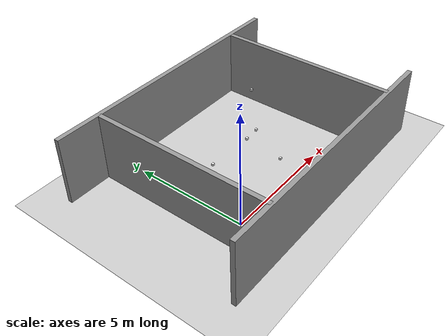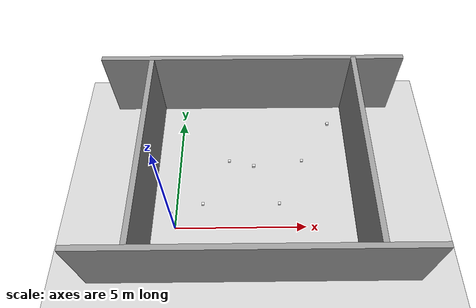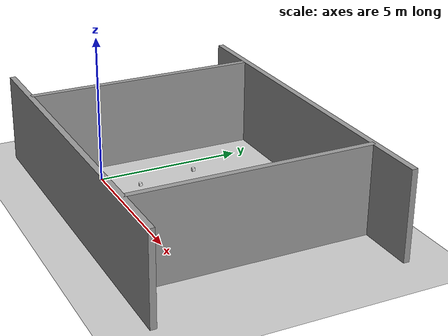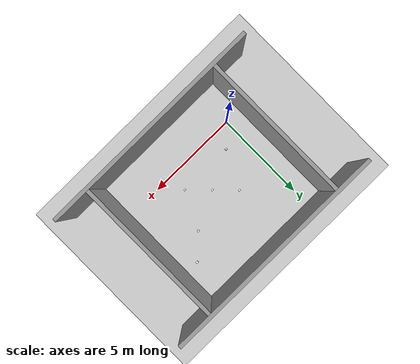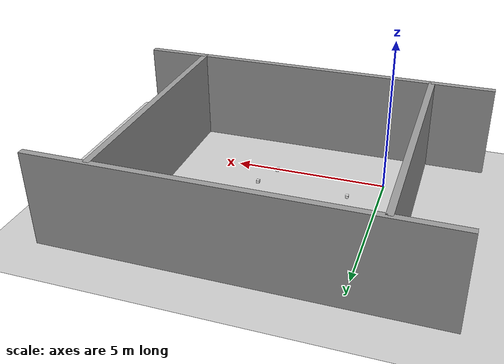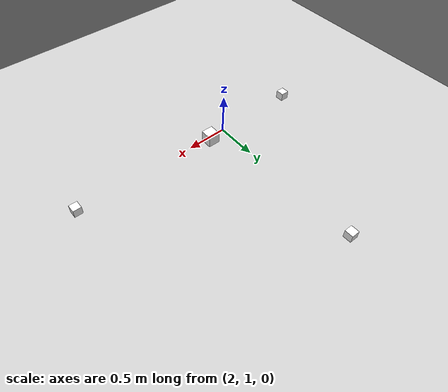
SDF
<sdf version="1.6">
 <world name="warehouse_world">
  <include><uri>model://ground_plane</uri></include>
  <include><uri>model://sun</uri></include>
  <include><uri>model://wood_cube_10cm</uri><name>box1</name><pose>1 1 0 0 0 0</pose></include>
  <include><uri>model://wood_cube_10cm</uri><name>box2</name><pose>4 1 0 0 0 0</pose></include>
  <include><uri>model://wood_cube_10cm</uri><name>box3</name><pose>2 3 0 0 0 0</pose></include>
  <include><uri>model://wood_cube_10cm</uri><name>box4</name><pose>5 3 0 0 0 0</pose></include>
  <include><uri>model://wood_cube_10cm</uri><name>shelf_box1</name><pose>0 0 1.2 0 0 0</pose></include>
  <include><uri>model://wood_cube_10cm</uri><name>shelf_box2</name><pose>3 2 1.2 0 0 0</pose></include>
  <include><uri>model://wood_cube_10cm</uri><name>shelf_box3</name><pose>6 4 1.2 0 0 0</pose></include>
  <model name="back_wall">
   <static>true</static>
   <link name="link">
    <collision name="collision"><geometry><box><size>12 0.2 3</size></box></geometry></collision>
    <visual name="visual">
     <geometry><box><size>12 0.2 3</size></box></geometry>
     <material><ambient>0.6 0.6 0.6 1</ambient></material>
    </visual>
    <pose>3 6 1.5 0 0 0</pose>
   </link>
  </model>
  <model name="front_wall">
   <static>true</static>
   <link name="link">
    <collision name="collision"><geometry><box><size>12 0.2 3</size></box></geometry></collision>
    <visual name="visual">
     <geometry><box><size>12 0.2 3</size></box></geometry>
     <material><ambient>0.6 0.6 0.6 1</ambient></material>
    </visual>
    <pose>3 -2 1.5 0 0 0</pose>
   </link>
  </model>
  <model name="left_wall">
   <static>true</static>
   <link name="link">
    <collision name="collision"><geometry><box><size>0.2 8 3</size></box></geometry></collision>
    <visual name="visual">
     <geometry><box><size>0.2 8 3</size></box></geometry>
     <material><ambient>0.6 0.6 0.6 1</ambient></material>
    </visual>
    <pose>-1 2 1.5 0 0 0</pose>
   </link>
  </model>
  <model name="right_wall">
   <static>true</static>
   <link name="link">
    <collision name="collision"><geometry><box><size>0.2 8 3</size></box></geometry></collision>
    <visual name="visual">
     <geometry><box><size>0.2 8 3</size></box></geometry>
     <material><ambient>0.6 0.6 0.6 1</ambient></material>
    </visual>
    <pose>7 2 1.5 0 0 0</pose>
   </link>
  </model>
 </world>
</sdf>

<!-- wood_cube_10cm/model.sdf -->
<sdf version="1.5">
  <model name="wood_cube_10cm">
    <link name="link">
      <pose>0 0 0.05 0 0 0</pose>
      <inertial>
        <mass>0.5167</mass>
        <inertia>
          <ixx>0.0008611666666666669</ixx>
          <ixy>0</ixy>
          <ixz>0</ixz>
          <iyy>0.0008611666666666669</iyy>
          <iyz>0</iyz>
          <izz>0.0008611666666666669</izz>
        </inertia>
      </inertial>

      <collision name="collision">
        <geometry>
          <box>
            <size>0.1 0.1 0.1</size>
          </box>
        </geometry>
        <surface>
          <contact>
            <!-- Red Pine coefficients for longitudinal axis of the wood
                 according to:
                 http://www.fpl.fs.fed.us/documnts/fplgtr/fplgtr113/ch04.pdf -->
            <poissons_ratio>0.347</poissons_ratio>
            <elastic_modulus>8.8e+09</elastic_modulus>
            <ode>
              <kp>100000</kp>
              <kd>100</kd>
              <max_vel>100.0</max_vel>
              <min_depth>0.001</min_depth>
            </ode>
          </contact>
          <friction>
            <torsional>
              <coefficient>1.0</coefficient>
              <use_patch_radius>0</use_patch_radius>
              <surface_radius>0.01</surface_radius>
            </torsional>
          </friction>
        </surface>
      </collision>

      <visual name="visual">
        <geometry>
          <box>
            <size>0.1 0.1 0.1</size>
          </box>
        </geometry>
        <material><diffuse>1 1 1 1</diffuse><specular>0.1 0.1 0.1 1</specular></material>
      </visual>

    </link>
  </model>
</sdf>
